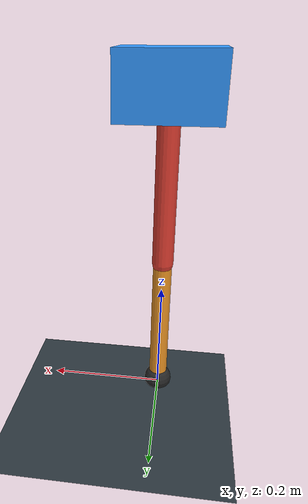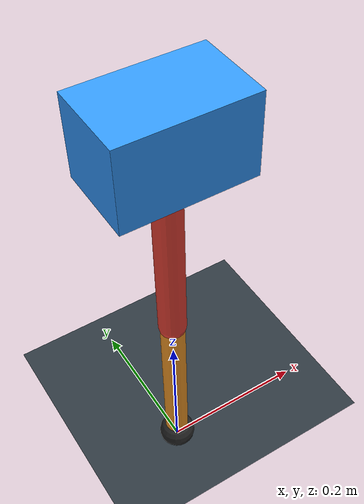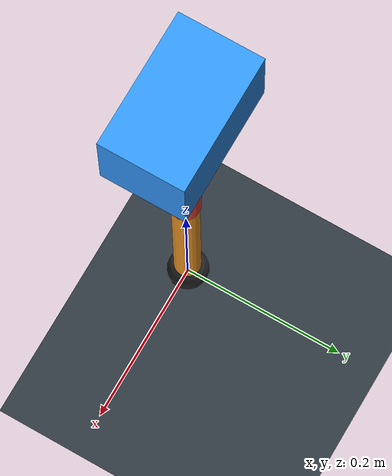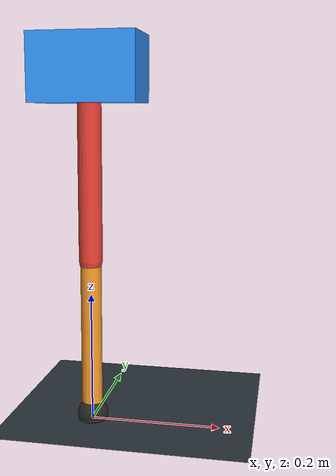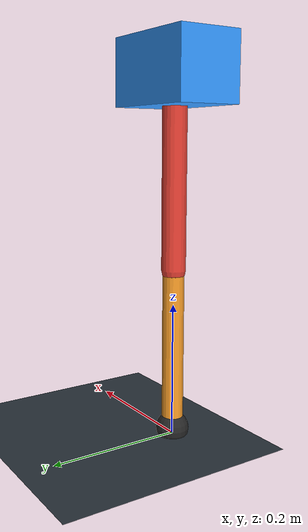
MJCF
<mujoco model="single_axis_two_bar">
  <compiler angle="radian" inertiafromgeom="true"/>
  <option timestep="0.001" integrator="implicitfast" gravity="0 0 -9.81"/>
  <default>
    <joint damping="0.08"/>
    <geom friction="1.2 0.01 0.0001" condim="3"/>
  </default>
  <worldbody>
    <geom name="floor" type="plane" size="5 5 0.1" rgba="0.18 0.22 0.25 1"/>
    <body name="carriage" pos="0 0 0.5405401033483272">
      <joint name="pole_slide" type="slide" axis="0 0 1"/>
      <geom name="payload" type="box" size="0.08 0.05 0.05" mass="2.529765058304961" rgba="0.2 0.6 1 1"/>
      <body name="thigh" pos="0 0 0">
        <joint name="hip" type="hinge" axis="0 1 0"/>
        <geom name="thigh_link" type="capsule" fromto="0 0 0 0 0 -0.28807771362788953" size="0.018" mass="0.20525917757100579" rgba="0.9 0.25 0.2 1"/>
        <body name="shank" pos="0 0 -0.28807771362788953">
          <joint name="knee" type="hinge" axis="0 1 0"/>
          <geom name="shank_link" type="capsule" fromto="0 0 0 0 0 -0.24340692899925193" size="0.016" mass="0.1734306532507614" rgba="0.95 0.6 0.15 1"/>
          <geom name="foot" type="sphere" pos="0 0 -0.24340692899925193" size="0.025" mass="0.03" rgba="0.15 0.15 0.15 1"/>
          <site name="toe" pos="0 0 -0.24340692899925193" size="0.008"/>
        </body>
      </body>
    </body>
  </worldbody>
  <actuator>
    <motor name="hip_motor" joint="hip" ctrlrange="-25.89092791992097 25.89092791992097"/>
    <motor name="knee_motor" joint="knee" ctrlrange="-100.89197290930957 100.89197290930957"/>
  </actuator>
</mujoco>
